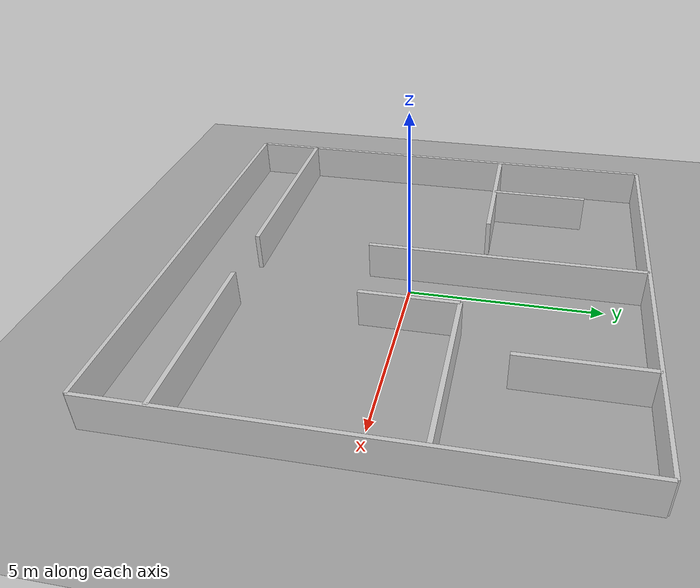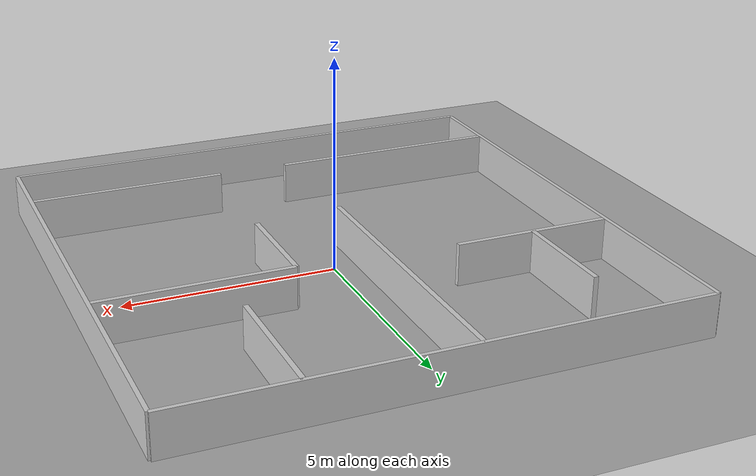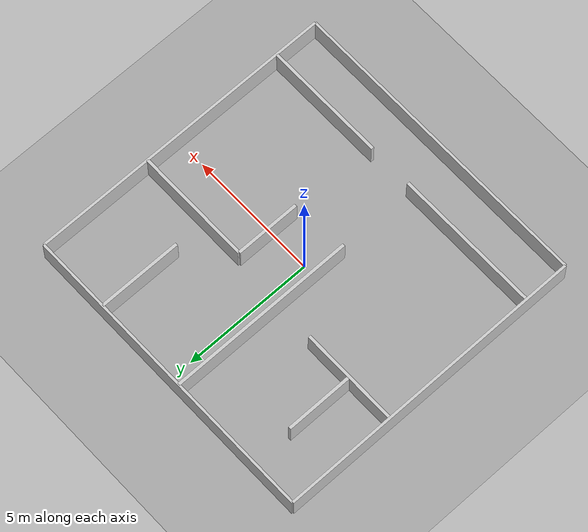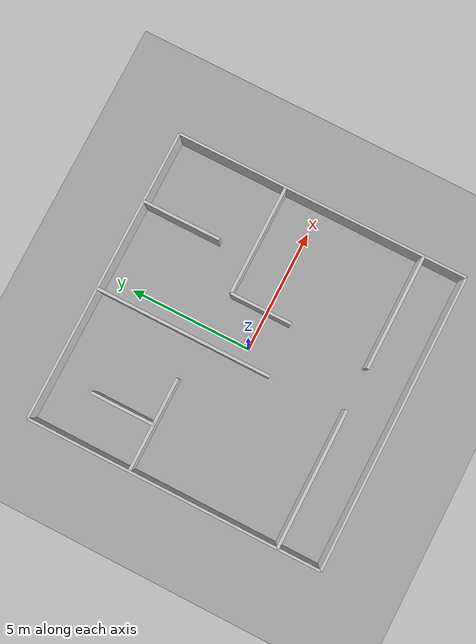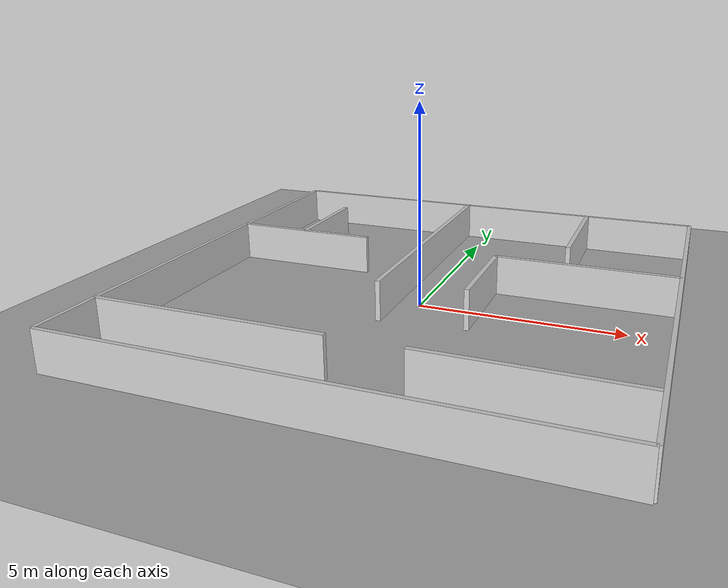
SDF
<?xml version="1.0"?>
<sdf version="1.9">
  <world name="lidar_world">
    <!-- Gazebo systems required by the simulation and GPU LiDAR. -->
    <plugin filename="gz-sim-physics-system" name="gz::sim::systems::Physics"/>
    <plugin filename="gz-sim-user-commands-system" name="gz::sim::systems::UserCommands"/>
    <plugin filename="gz-sim-scene-broadcaster-system" name="gz::sim::systems::SceneBroadcaster"/>
    <plugin filename="gz-sim-sensors-system" name="gz::sim::systems::Sensors">
      <render_engine>ogre2</render_engine>
    </plugin>

    <!-- Simulation settings. -->
    <gravity>0 0 -9.8</gravity>
    <physics name="default_physics" type="ignored">
      <max_step_size>0.001</max_step_size>
      <real_time_factor>1.0</real_time_factor>
    </physics>

    <scene>
      <ambient>0.4 0.4 0.4 1</ambient>
      <background>0.7 0.7 0.7 1</background>
      <shadows>true</shadows>
    </scene>

    <!-- Directional light. -->
    <light name="sun" type="directional">
      <cast_shadows>true</cast_shadows>
      <pose>0 0 10 0 0 0</pose>
      <diffuse>0.8 0.8 0.8 1</diffuse>
      <specular>0.2 0.2 0.2 1</specular>
      <attenuation>
        <range>1000</range>
        <constant>0.9</constant>
        <linear>0.01</linear>
        <quadratic>0.001</quadratic>
      </attenuation>
      <direction>-0.5 0.1 -0.9</direction>
    </light>

    <!-- Local ground plane: no external Gazebo Fuel model is required. -->
    <model name="ground_plane">
      <static>true</static>
      <link name="ground_link">
        <collision name="ground_collision">
          <geometry>
            <plane>
              <normal>0 0 1</normal>
              <size>14 14</size>
            </plane>
          </geometry>
        </collision>
        <visual name="ground_visual">
          <geometry>
            <plane>
              <normal>0 0 1</normal>
              <size>14 14</size>
            </plane>
          </geometry>
          <material>
            <ambient>0.65 0.65 0.65 1</ambient>
            <diffuse>0.65 0.65 0.65 1</diffuse>
          </material>
        </visual>
      </link>
    </model>

<!-- BASICS CONFIG FOR WORLD MAP -->

    <model name="north_wall">
      <static>true</static>
      <pose>0 6.0 0.5 0 0 0</pose>
      <link name="wall_link">
        <collision name="collision">
          <geometry><box><size>12.0 0.10 1.0</size></box></geometry>
        </collision>
        <visual name="visual">
          <geometry><box><size>12.0 0.10 1.0</size></box></geometry>
          <material><diffuse>0.8 0.8 0.8 1</diffuse></material>
        </visual>
      </link>
    </model>

    <model name="south_wall">
      <static>true</static>
      <pose>0 -6.0 0.5 0 0 0</pose>
      <link name="wall_link">
        <collision name="collision">
          <geometry><box><size>12.0 0.10 1.0</size></box></geometry>
        </collision>
        <visual name="visual">
          <geometry><box><size>12.0 0.10 1.0</size></box></geometry>
          <material><diffuse>0.8 0.8 0.8 1</diffuse></material>
        </visual>
      </link>
    </model>

    <model name="east_wall">
      <static>true</static>
      <pose>6.0 0 0.5 0 0 0</pose>
      <link name="wall_link">
        <collision name="collision">
          <geometry><box><size>0.10 12.0 1.0</size></box></geometry>
        </collision>
        <visual name="visual">
          <geometry><box><size>0.10 12.0 1.0</size></box></geometry>
          <material><diffuse>0.8 0.8 0.8 1</diffuse></material>
        </visual>
      </link>
    </model>

    <model name="west_wall">
      <static>true</static>
      <pose>-6.0 0 0.5 0 0 0</pose>
      <link name="wall_link">
        <collision name="collision">
          <geometry><box><size>0.10 12.0 1.0</size></box></geometry>
        </collision>
        <visual name="visual">
          <geometry><box><size>0.10 12.0 1.0</size></box></geometry>
          <material><diffuse>0.8 0.8 0.8 1</diffuse></material>
        </visual>
      </link>
    </model>

    <!-- Maze layout adapted from maze1.sdf to the 12 m square.
         The lower cross walls leave a 1.7 m opening. -->
<model name="lower_west_wall">
  <static>true</static>
  <pose>-3.2 -4.25 0.5 0 0 0</pose>

  <link name="wall_link">

    <collision name="collision">
      <geometry>
        <box>
          <size>5.6 0.12 1.0</size>
        </box>
      </geometry>
    </collision>

    <visual name="visual">
      <geometry>
        <box>
          <size>5.6 0.12 1.0</size>
        </box>
      </geometry>

      <material>
        <diffuse>0.80 0.80 0.80 1</diffuse>
      </material>
    </visual>

  </link>
</model>

<model name="lower_east_wall">
  <static>true</static>
  <pose>3.65 -4.25 0.5 0 0 0</pose>

  <link name="wall_link">

    <collision name="collision">
      <geometry>
        <box>
          <size>4.7 0.12 1.0</size>
        </box>
      </geometry>
    </collision>

    <visual name="visual">
      <geometry>
        <box>
          <size>4.7 0.12 1.0</size>
        </box>
      </geometry>

      <material>
        <diffuse>0.80 0.80 0.80 1</diffuse>
      </material>
    </visual>

  </link>
</model>

    <!-- Upper cross walls create two side passages. -->
<model name="upper_west_wall">
  <static>true</static>
  <pose>-4.1 1.8 0.5 0 0 0</pose>

  <link name="wall_link">

    <collision name="collision">
      <geometry>
        <box>
          <size>3.8 0.12 1.0</size>
        </box>
      </geometry>
    </collision>

    <visual name="visual">
      <geometry>
        <box>
          <size>3.8 0.12 1.0</size>
        </box>
      </geometry>

      <material>
        <diffuse>0.80 0.80 0.80 1</diffuse>
      </material>
    </visual>

  </link>
</model>

<model name="upper_east_wall">
  <static>true</static>
  <pose>3.75 1.5 0.5 0 0 0</pose>

  <link name="wall_link">

    <collision name="collision">
      <geometry>
        <box>
          <size>4.5 0.12 1.0</size>
        </box>
      </geometry>
    </collision>

    <visual name="visual">
      <geometry>
        <box>
          <size>4.5 0.12 1.0</size>
        </box>
      </geometry>

      <material>
        <diffuse>0.80 0.80 0.80 1</diffuse>
      </material>
    </visual>

  </link>
</model>

<!-- The central divider is offset so the robot can spawn at (0, 0). -->
<model name="central_divider">
  <static>true</static>
  <pose>-0.6 2.4 0.5 0 0 0</pose>
  <link name="wall_link">
    <collision name="collision">
      <geometry><box><size>0.12 7.2 1.0</size></box></geometry>
    </collision>
    <visual name="visual">
      <geometry><box><size>0.12 7.2 1.0</size></box></geometry>
      <material><diffuse>0.8 0.8 0.8 1</diffuse></material>
    </visual>
  </link>
</model>

<model name="east_divider">
  <static>true</static>
  <pose>1.5 0.25 0.5 0 0 0</pose>
  <link name="wall_link">
    <collision name="collision">
      <geometry><box><size>0.12 2.5 1.0</size></box></geometry>
    </collision>
    <visual name="visual">
      <geometry><box><size>0.12 2.5 1.0</size></box></geometry>
      <material><diffuse>0.8 0.8 0.8 1</diffuse></material>
    </visual>
  </link>
</model>

<!-- Two northern branches reproduce the turns in maze1.sdf. -->
<model name="northwest_branch_wall">
  <static>true</static>
  <pose>-4.1 3.1 0.5 0 0 0</pose>
  <link name="wall_link">
    <collision name="collision">
      <geometry><box><size>0.12 2.6 1.0</size></box></geometry>
    </collision>
    <visual name="visual">
      <geometry><box><size>0.12 2.6 1.0</size></box></geometry>
      <material><diffuse>0.8 0.8 0.8 1</diffuse></material>
    </visual>
  </link>
</model>

<model name="northeast_branch_wall">
  <static>true</static>
  <pose>3.1 4.4 0.5 0 0 0</pose>
  <link name="wall_link">
    <collision name="collision">
      <geometry><box><size>0.12 3.2 1.0</size></box></geometry>
    </collision>
    <visual name="visual">
      <geometry><box><size>0.12 3.2 1.0</size></box></geometry>
      <material><diffuse>0.8 0.8 0.8 1</diffuse></material>
    </visual>
  </link>
</model>

  </world>
</sdf>
